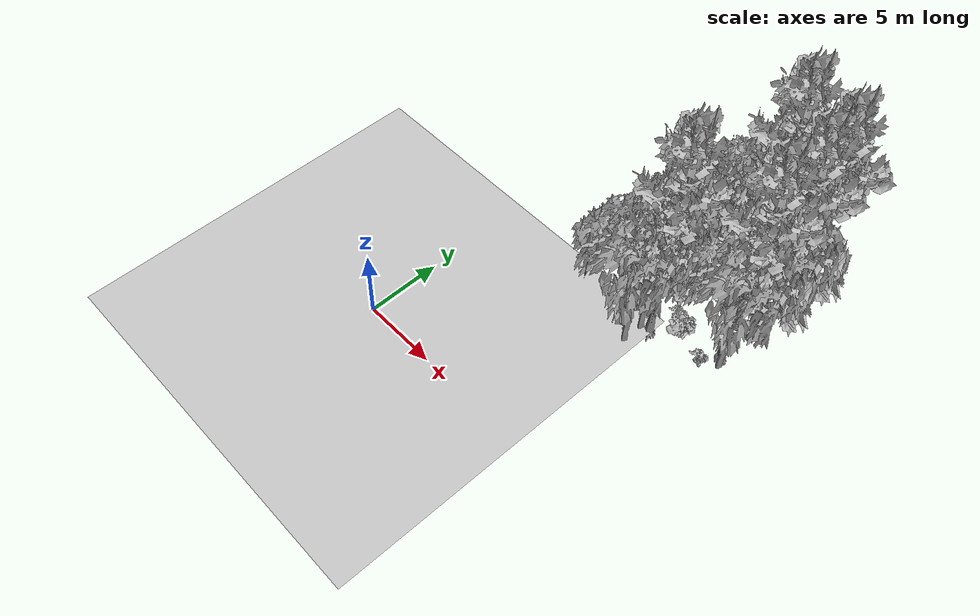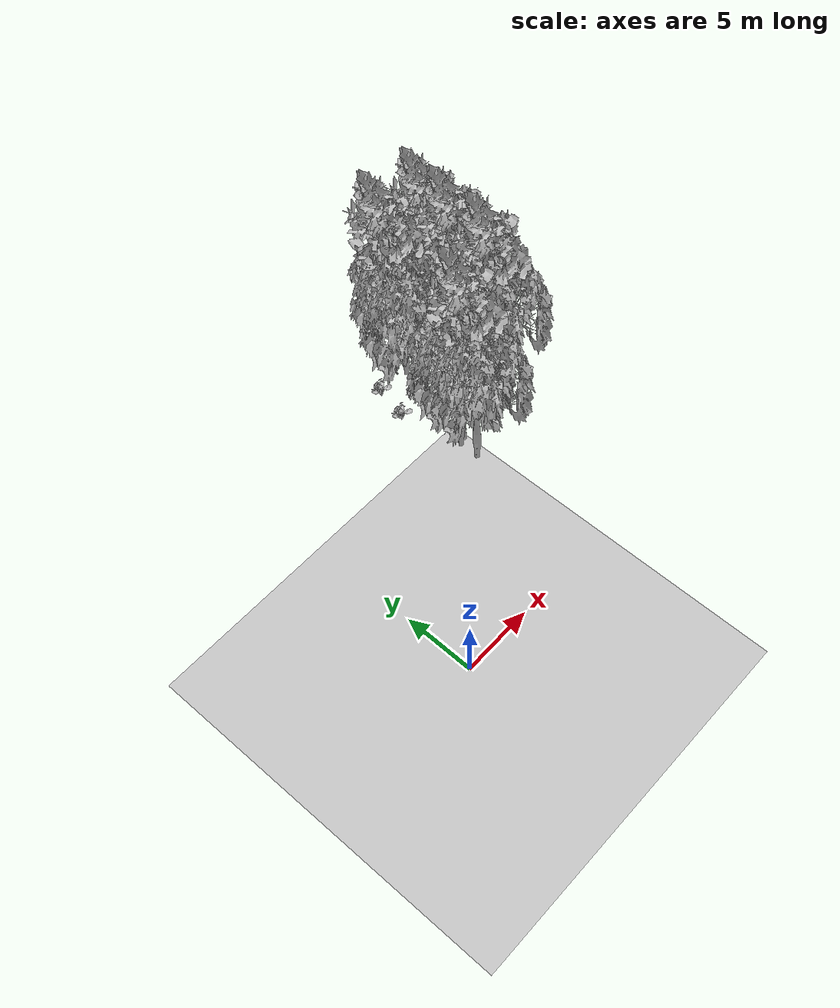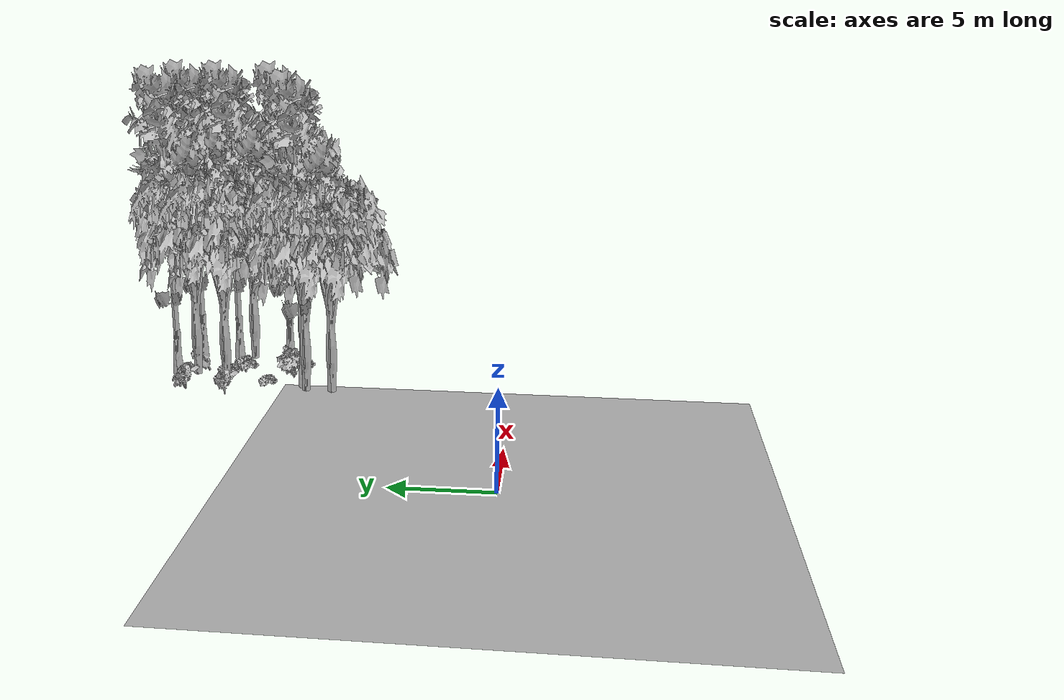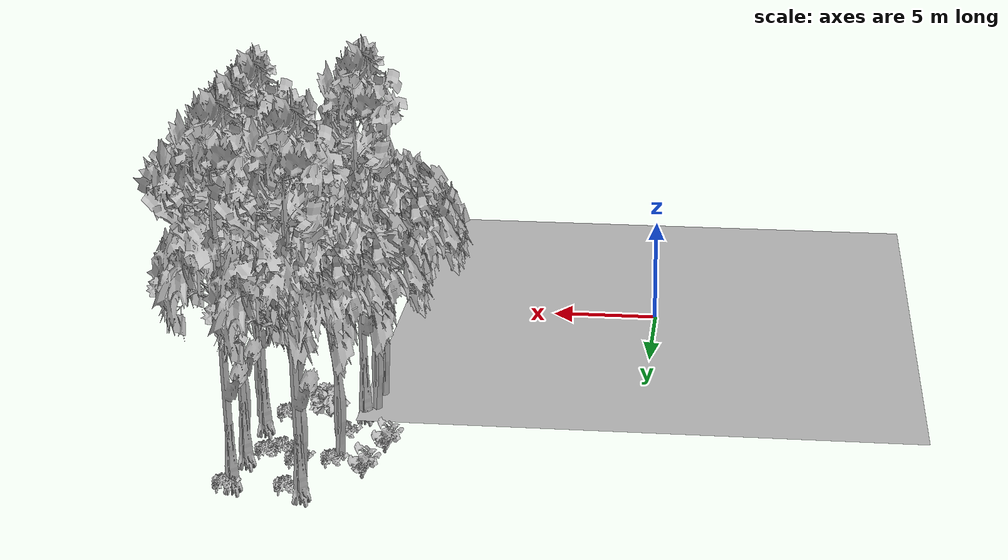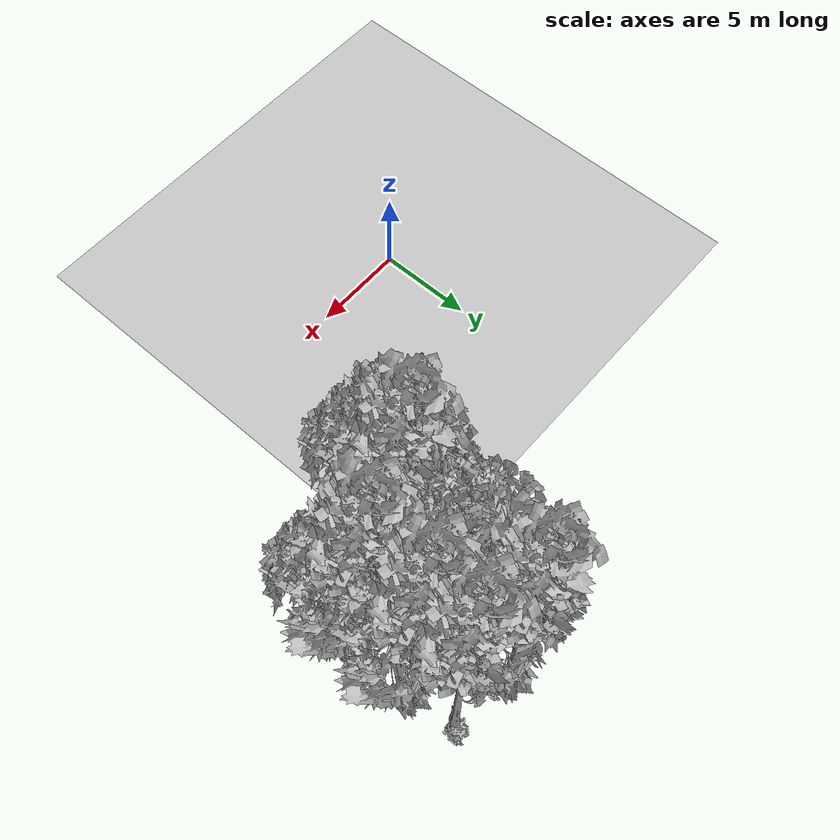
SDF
<sdf version="1.7">
 <world name="default">
  <model name="ground_plane">
   <static>1</static>
   <link name="link">
    <collision name="collision">
     <pose>-50 0 0 0 -0 0</pose>
     <geometry><plane><normal>0 0 1</normal><size>80 80</size></plane></geometry>
     <surface><contact><ode><min_depth>0.01</min_depth><max_vel>0</max_vel></ode></contact></surface>
    </collision>
    <visual name="grass">
     <cast_shadows>0</cast_shadows>
     <geometry>
      <mesh>
       <scale>0.46714285714285714 0.46714285714285714 0.1</scale>
       <uri>file://grass_plane/meshes/grass_plane.dae</uri>
      </mesh>
     </geometry>
    </visual>
   </link>
  </model>
  <model name="Tree 17">
   <static>1</static>
   <pose>12.373503499018454 11.518207295434493 0 1.57079 -0 0</pose>
   <link name="link">
    <collision name="collision">
     <geometry><mesh><scale>3.5 5 3.5</scale><uri>model://tree_9/meshes/tree_9.obj</uri></mesh></geometry>
    </collision>
    <visual name="visual">
     <geometry><mesh><scale>3.5 5 3.5</scale><uri>model://tree_9/meshes/tree_9.obj</uri></mesh></geometry>
    </visual>
   </link>
  </model>
  <model name="Tree 136">
   <static>1</static>
   <pose>13.729998070337302 17.936908076309457 0 1.57079 -0 0</pose>
   <link name="link">
    <collision name="collision">
     <geometry><mesh><scale>3.5 5 3.5</scale><uri>model://tree_2/meshes/tree_2.obj</uri></mesh></geometry>
    </collision>
    <visual name="visual">
     <geometry><mesh><scale>3.5 5 3.5</scale><uri>model://tree_2/meshes/tree_2.obj</uri></mesh></geometry>
    </visual>
   </link>
  </model>
  <model name="Tree 229">
   <static>1</static>
   <pose>11.725064077546115 9.810316092793279 0 1.57079 -0 0</pose>
   <link name="link">
    <collision name="collision">
     <geometry><mesh><scale>3.5 5 3.5</scale><uri>model://tree_2/meshes/tree_2.obj</uri></mesh></geometry>
    </collision>
    <visual name="visual">
     <geometry><mesh><scale>3.5 5 3.5</scale><uri>model://tree_2/meshes/tree_2.obj</uri></mesh></geometry>
    </visual>
   </link>
  </model>
  <model name="Tree 292">
   <static>1</static>
   <pose>16.70703766183729 18.494605721639047 0 1.57079 -0 0</pose>
   <link name="link">
    <collision name="collision">
     <geometry><mesh><scale>3.5 5 3.5</scale><uri>model://tree_9/meshes/tree_9.obj</uri></mesh></geometry>
    </collision>
    <visual name="visual">
     <geometry><mesh><scale>3.5 5 3.5</scale><uri>model://tree_9/meshes/tree_9.obj</uri></mesh></geometry>
    </visual>
   </link>
  </model>
  <model name="Tree 399">
   <static>1</static>
   <pose>11.764087636396411 11.241125035287808 0 1.57079 -0 0</pose>
   <link name="link">
    <collision name="collision">
     <geometry><mesh><scale>3.5 5 3.5</scale><uri>model://tree_2/meshes/tree_2.obj</uri></mesh></geometry>
    </collision>
    <visual name="visual">
     <geometry><mesh><scale>3.5 5 3.5</scale><uri>model://tree_2/meshes/tree_2.obj</uri></mesh></geometry>
    </visual>
   </link>
  </model>
  <model name="Tree 432">
   <static>1</static>
   <pose>13.66300627567096 19.068071607341892 0 1.57079 -0 0</pose>
   <link name="link">
    <collision name="collision">
     <geometry><mesh><scale>3.5 5 3.5</scale><uri>model://tree_9/meshes/tree_9.obj</uri></mesh></geometry>
    </collision>
    <visual name="visual">
     <geometry><mesh><scale>3.5 5 3.5</scale><uri>model://tree_9/meshes/tree_9.obj</uri></mesh></geometry>
    </visual>
   </link>
  </model>
  <model name="Tree 476">
   <static>1</static>
   <pose>16.775494919582833 15.404283142830664 0 1.57079 -0 0</pose>
   <link name="link">
    <collision name="collision">
     <geometry><mesh><scale>3.5 5 3.5</scale><uri>model://tree_2/meshes/tree_2.obj</uri></mesh></geometry>
    </collision>
    <visual name="visual">
     <geometry><mesh><scale>3.5 5 3.5</scale><uri>model://tree_2/meshes/tree_2.obj</uri></mesh></geometry>
    </visual>
   </link>
  </model>
  <model name="Tree 534">
   <static>1</static>
   <pose>12.510721717403783 15.944728390969765 0 1.57079 -0 0</pose>
   <link name="link">
    <collision name="collision">
     <geometry><mesh><scale>3.5 5 3.5</scale><uri>model://tree_2/meshes/tree_2.obj</uri></mesh></geometry>
    </collision>
    <visual name="visual">
     <geometry><mesh><scale>3.5 5 3.5</scale><uri>model://tree_2/meshes/tree_2.obj</uri></mesh></geometry>
    </visual>
   </link>
  </model>
  <model name="Tree 554">
   <static>1</static>
   <pose>16.66149323571262 16.28230215884058 0 1.57079 -0 0</pose>
   <link name="link">
    <collision name="collision">
     <geometry><mesh><scale>3.5 5 3.5</scale><uri>model://tree_9/meshes/tree_9.obj</uri></mesh></geometry>
    </collision>
    <visual name="visual">
     <geometry><mesh><scale>3.5 5 3.5</scale><uri>model://tree_9/meshes/tree_9.obj</uri></mesh></geometry>
    </visual>
   </link>
  </model>
  <model name="Tree 562">
   <static>1</static>
   <pose>16.792972622753908 12.508673470174678 0 1.57079 -0 0</pose>
   <link name="link">
    <collision name="collision">
     <geometry><mesh><scale>3.5 5 3.5</scale><uri>model://tree_2/meshes/tree_2.obj</uri></mesh></geometry>
    </collision>
    <visual name="visual">
     <geometry><mesh><scale>3.5 5 3.5</scale><uri>model://tree_2/meshes/tree_2.obj</uri></mesh></geometry>
    </visual>
   </link>
  </model>
  <model name="Tree 586">
   <static>1</static>
   <pose>16.54861068280436 13.22011314942582 0 1.57079 -0 0</pose>
   <link name="link">
    <collision name="collision">
     <geometry><mesh><scale>3.5 5 3.5</scale><uri>model://tree_9/meshes/tree_9.obj</uri></mesh></geometry>
    </collision>
    <visual name="visual">
     <geometry><mesh><scale>3.5 5 3.5</scale><uri>model://tree_9/meshes/tree_9.obj</uri></mesh></geometry>
    </visual>
   </link>
  </model>
  <model name="Bush 33">
   <static>1</static>
   <pose>16.919174235284736 18.83185049849218 0 1.57079 -0 0</pose>
   <link name="link">
    <collision name="collision">
     <geometry><mesh><scale>2 2 2</scale><uri>model://bush_2/meshes/bush_2.obj</uri></mesh></geometry>
     <surface><contact><collide_without_contact>false</collide_without_contact></contact></surface>
    </collision>
    <visual name="visual">
     <geometry><mesh><scale>2 2 2</scale><uri>model://bush_2/meshes/bush_2.obj</uri></mesh></geometry>
    </visual>
   </link>
  </model>
  <model name="Bush 36">
   <static>1</static>
   <pose>14.313519903053297 18.8103127706066 0 1.57079 -0 0</pose>
   <link name="link">
    <collision name="collision">
     <geometry><mesh><scale>2 2 2</scale><uri>model://bush_2/meshes/bush_2.obj</uri></mesh></geometry>
     <surface><contact><collide_without_contact>false</collide_without_contact></contact></surface>
    </collision>
    <visual name="visual">
     <geometry><mesh><scale>2 2 2</scale><uri>model://bush_2/meshes/bush_2.obj</uri></mesh></geometry>
    </visual>
   </link>
  </model>
  <model name="Bush 183">
   <static>1</static>
   <pose>12.782233638608751 13.663047103843617 0 1.57079 -0 0</pose>
   <link name="link">
    <collision name="collision">
     <geometry><mesh><scale>2 2 2</scale><uri>model://bush_2/meshes/bush_2.obj</uri></mesh></geometry>
     <surface><contact><collide_without_contact>false</collide_without_contact></contact></surface>
    </collision>
    <visual name="visual">
     <geometry><mesh><scale>2 2 2</scale><uri>model://bush_2/meshes/bush_2.obj</uri></mesh></geometry>
    </visual>
   </link>
  </model>
  <model name="Bush 274">
   <static>1</static>
   <pose>15.218571240548563 15.361120430126611 0 1.57079 -0 0</pose>
   <link name="link">
    <collision name="collision">
     <geometry><mesh><scale>2 2 2</scale><uri>model://bush_2/meshes/bush_2.obj</uri></mesh></geometry>
     <surface><contact><collide_without_contact>false</collide_without_contact></contact></surface>
    </collision>
    <visual name="visual">
     <geometry><mesh><scale>2 2 2</scale><uri>model://bush_2/meshes/bush_2.obj</uri></mesh></geometry>
    </visual>
   </link>
  </model>
  <model name="Bush 302">
   <static>1</static>
   <pose>15.718962653702633 12.12326632131169 0 1.57079 -0 0</pose>
   <link name="link">
    <collision name="collision">
     <geometry><mesh><scale>2 2 2</scale><uri>model://bush_2/meshes/bush_2.obj</uri></mesh></geometry>
     <surface><contact><collide_without_contact>false</collide_without_contact></contact></surface>
    </collision>
    <visual name="visual">
     <geometry><mesh><scale>2 2 2</scale><uri>model://bush_2/meshes/bush_2.obj</uri></mesh></geometry>
    </visual>
   </link>
  </model>
  <model name="Bush 308">
   <static>1</static>
   <pose>15.86248388687391 15.736609530712762 0 1.57079 -0 0</pose>
   <link name="link">
    <collision name="collision">
     <geometry><mesh><scale>2 2 2</scale><uri>model://bush_2/meshes/bush_2.obj</uri></mesh></geometry>
     <surface><contact><collide_without_contact>false</collide_without_contact></contact></surface>
    </collision>
    <visual name="visual">
     <geometry><mesh><scale>2 2 2</scale><uri>model://bush_2/meshes/bush_2.obj</uri></mesh></geometry>
    </visual>
   </link>
  </model>
  <model name="Bush 347">
   <static>1</static>
   <pose>13.787697909078638 12.379928200515806 0 1.57079 -0 0</pose>
   <link name="link">
    <collision name="collision">
     <geometry><mesh><scale>2 2 2</scale><uri>model://bush_1/meshes/bush_1.obj</uri></mesh></geometry>
     <surface><contact><collide_without_contact>false</collide_without_contact></contact></surface>
    </collision>
    <visual name="visual">
     <geometry><mesh><scale>2 2 2</scale><uri>model://bush_1/meshes/bush_1.obj</uri></mesh></geometry>
    </visual>
   </link>
  </model>
  <model name="Bush 375">
   <static>1</static>
   <pose>12.857676456127152 16.27066768530385 0 1.57079 -0 0</pose>
   <link name="link">
    <collision name="collision">
     <geometry><mesh><scale>2 2 2</scale><uri>model://bush_2/meshes/bush_2.obj</uri></mesh></geometry>
     <surface><contact><collide_without_contact>false</collide_without_contact></contact></surface>
    </collision>
    <visual name="visual">
     <geometry><mesh><scale>2 2 2</scale><uri>model://bush_2/meshes/bush_2.obj</uri></mesh></geometry>
    </visual>
   </link>
  </model>
  <model name="Bush 390">
   <static>1</static>
   <pose>10.763927836159851 15.558477796907326 0 1.57079 -0 0</pose>
   <link name="link">
    <collision name="collision">
     <geometry><mesh><scale>2 2 2</scale><uri>model://bush_0/meshes/bush_0.obj</uri></mesh></geometry>
     <surface><contact><collide_without_contact>false</collide_without_contact></contact></surface>
    </collision>
    <visual name="visual">
     <geometry><mesh><scale>2 2 2</scale><uri>model://bush_0/meshes/bush_0.obj</uri></mesh></geometry>
    </visual>
   </link>
  </model>
  <model name="Bush 420">
   <static>1</static>
   <pose>14.379479784052748 16.469022351017273 0 1.57079 -0 0</pose>
   <link name="link">
    <collision name="collision">
     <geometry><mesh><scale>2 2 2</scale><uri>model://bush_2/meshes/bush_2.obj</uri></mesh></geometry>
     <surface><contact><collide_without_contact>false</collide_without_contact></contact></surface>
    </collision>
    <visual name="visual">
     <geometry><mesh><scale>2 2 2</scale><uri>model://bush_2/meshes/bush_2.obj</uri></mesh></geometry>
    </visual>
   </link>
  </model>
  <model name="Bush 434">
   <static>1</static>
   <pose>11.313101705171277 17.922592283736307 0 1.57079 -0 0</pose>
   <link name="link">
    <collision name="collision">
     <geometry><mesh><scale>2 2 2</scale><uri>model://bush_0/meshes/bush_0.obj</uri></mesh></geometry>
     <surface><contact><collide_without_contact>false</collide_without_contact></contact></surface>
    </collision>
    <visual name="visual">
     <geometry><mesh><scale>2 2 2</scale><uri>model://bush_0/meshes/bush_0.obj</uri></mesh></geometry>
    </visual>
   </link>
  </model>
  <model name="Bush 452">
   <static>1</static>
   <pose>14.340649467491332 16.195517854579442 0 1.57079 -0 0</pose>
   <link name="link">
    <collision name="collision">
     <geometry><mesh><scale>2 2 2</scale><uri>model://bush_2/meshes/bush_2.obj</uri></mesh></geometry>
     <surface><contact><collide_without_contact>false</collide_without_contact></contact></surface>
    </collision>
    <visual name="visual">
     <geometry><mesh><scale>2 2 2</scale><uri>model://bush_2/meshes/bush_2.obj</uri></mesh></geometry>
    </visual>
   </link>
  </model>
 </world>
</sdf>
